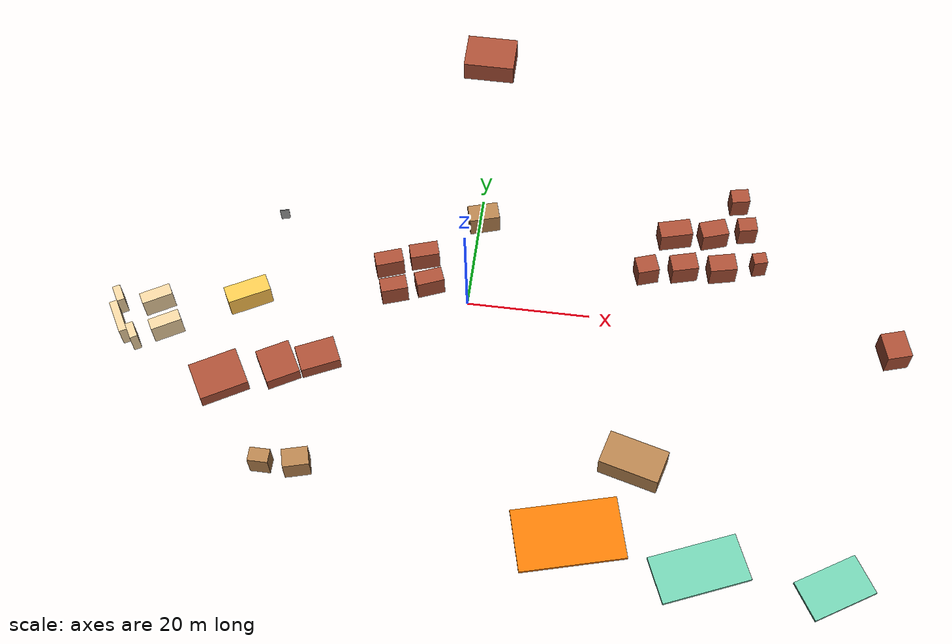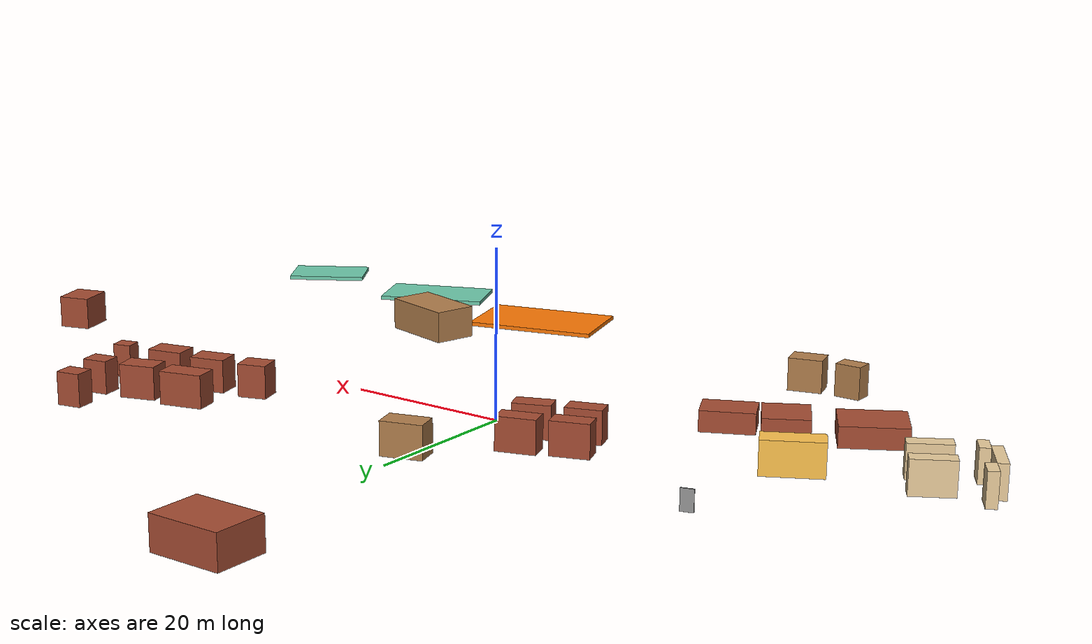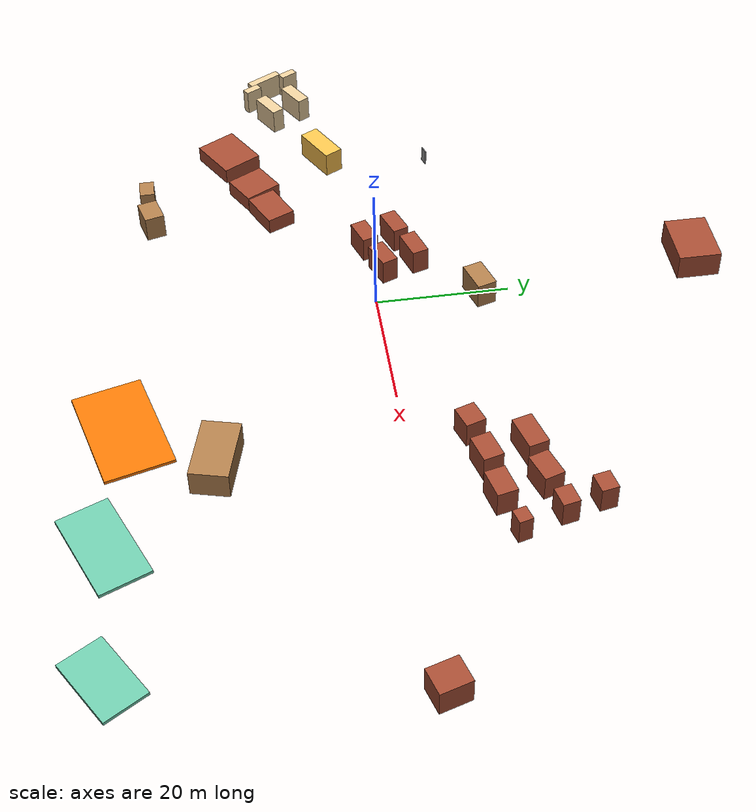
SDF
<?xml version='1.0'?>
<sdf version='1.7'>
  <model name='v1'>
    <pose>7.18403 2.61144 0 0 -0 0</pose>
    <link name='Wall_16'>
      <collision name='Wall_16_Collision'>
        <geometry>
          <box>
            <size>2.80067 1.25 4</size>
          </box>
        </geometry>
        <pose>0 0 2 0 -0 0</pose>
      </collision>
      <visual name='Wall_16_Visual'>
        <pose>0 0 2 0 -0 0</pose>
        <geometry>
          <box>
            <size>2.80067 1.25 4</size>
          </box>
        </geometry>
        <material>
          <script>
            <uri>file://media/materials/scripts/gazebo.material</uri>
            <name>Gazebo/Grey</name>
          </script>
          <ambient>0.921569 0.807843 0.615686 1</ambient>
        </material>
        <meta>
          <layer>0</layer>
        </meta>
      </visual>
      <pose>-59.5805 -16.5579 0 0 -0 2.09418</pose>
    </link>
    <link name='Wall_18'>
      <collision name='Wall_18_Collision'>
        <geometry>
          <box>
            <size>2.80018 1.25 4</size>
          </box>
        </geometry>
        <pose>0 0 2 0 -0 0</pose>
      </collision>
      <visual name='Wall_18_Visual'>
        <pose>0 0 2 0 -0 0</pose>
        <geometry>
          <box>
            <size>2.80018 1.25 4</size>
          </box>
        </geometry>
        <material>
          <script>
            <uri>file://media/materials/scripts/gazebo.material</uri>
            <name>Gazebo/Grey</name>
          </script>
          <ambient>0.921569 0.807843 0.615686 1</ambient>
        </material>
        <meta>
          <layer>0</layer>
        </meta>
      </visual>
      <pose>-63.2985 -10.1519 0 0 -0 2.09418</pose>
    </link>
    <link name='Wall_20'>
      <collision name='Wall_20_Collision'>
        <geometry>
          <box>
            <size>5.80026 1.25 4</size>
          </box>
        </geometry>
        <pose>0 0 2 0 -0 0</pose>
      </collision>
      <visual name='Wall_20_Visual'>
        <pose>0 0 2 0 -0 0</pose>
        <geometry>
          <box>
            <size>5.80026 1.25 4</size>
          </box>
        </geometry>
        <material>
          <script>
            <uri>file://media/materials/scripts/gazebo.material</uri>
            <name>Gazebo/Grey</name>
          </script>
          <ambient>0.921569 0.807843 0.615686 1</ambient>
        </material>
        <meta>
          <layer>0</layer>
        </meta>
      </visual>
      <pose>-62.3175 -14.3269 0 0 -0 -1.04726</pose>
    </link>
    <link name='Wall_23'>
      <collision name='Wall_23_Collision'>
        <geometry>
          <box>
            <size>5 2 4</size>
          </box>
        </geometry>
        <pose>0 0 2 0 -0 0</pose>
      </collision>
      <visual name='Wall_23_Visual'>
        <pose>0 0 2 0 -0 0</pose>
        <geometry>
          <box>
            <size>5 2 4</size>
          </box>
        </geometry>
        <material>
          <script>
            <uri>file://media/materials/scripts/gazebo.material</uri>
            <name>Gazebo/Grey</name>
          </script>
          <ambient>0.921569 0.807843 0.615686 1</ambient>
        </material>
        <meta>
          <layer>0</layer>
        </meta>
      </visual>
      <pose>-57.232 -9.51344 0 0 -0 0.523611</pose>
    </link>
    <link name='Wall_29'>
      <collision name='Wall_29_Collision'>
        <geometry>
          <box>
            <size>5 2 4</size>
          </box>
        </geometry>
        <pose>0 0 2 0 -0 0</pose>
      </collision>
      <visual name='Wall_29_Visual'>
        <pose>0 0 2 0 -0 0</pose>
        <geometry>
          <box>
            <size>5 2 4</size>
          </box>
        </geometry>
        <material>
          <script>
            <uri>file://media/materials/scripts/gazebo.material</uri>
            <name>Gazebo/Grey</name>
          </script>
          <ambient>0.921569 0.807843 0.615686 1</ambient>
        </material>
        <meta>
          <layer>0</layer>
        </meta>
      </visual>
      <pose>-54.732 -14.0254 0 0 -0 0.523611</pose>
    </link>
    <link name='Wall_31'>
      <collision name='Wall_31_Collision'>
        <geometry>
          <box>
            <size>7.07571 3 4</size>
          </box>
        </geometry>
        <pose>0 0 2 0 -0 0</pose>
      </collision>
      <visual name='Wall_31_Visual'>
        <pose>0 0 2 0 -0 0</pose>
        <geometry>
          <box>
            <size>7.07571 3 4</size>
          </box>
        </geometry>
        <material>
          <script>
            <uri>file://media/materials/scripts/gazebo.material</uri>
            <name>Gazebo/Grey</name>
          </script>
          <ambient>1 0.764706 0.305882 1</ambient>
        </material>
        <meta>
          <layer>0</layer>
        </meta>
      </visual>
      <pose>-42.7581 -6.66576 0 0 -0 0.498005</pose>
    </link>
    <link name='Wall_34'>
      <collision name='Wall_34_Collision'>
        <geometry>
          <box>
            <size>4.34585 2.5 4</size>
          </box>
        </geometry>
        <pose>0 0 2 0 -0 0</pose>
      </collision>
      <visual name='Wall_34_Visual'>
        <pose>0 0 2 0 -0 0</pose>
        <geometry>
          <box>
            <size>4.34585 2.5 4</size>
          </box>
        </geometry>
        <material>
          <script>
            <uri>file://media/materials/scripts/gazebo.material</uri>
            <name>Gazebo/Bricks</name>
          </script>
          <ambient>0.435294 0.796078 0.67451 1</ambient>
        </material>
        <meta>
          <layer>0</layer>
        </meta>
      </visual>
      <pose>-19.3355 -2.70814 0 0 -0 0.327061</pose>
    </link>
    <link name='Wall_36'>
      <collision name='Wall_36_Collision'>
        <geometry>
          <box>
            <size>4.60603 2.5 4</size>
          </box>
        </geometry>
        <pose>0 0 2 0 -0 0</pose>
      </collision>
      <visual name='Wall_36_Visual'>
        <pose>0 0 2 0 -0 0</pose>
        <geometry>
          <box>
            <size>4.60603 2.5 4</size>
          </box>
        </geometry>
        <material>
          <script>
            <uri>file://media/materials/scripts/gazebo.material</uri>
            <name>Gazebo/Bricks</name>
          </script>
          <ambient>0.435294 0.796078 0.67451 1</ambient>
        </material>
        <meta>
          <layer>0</layer>
        </meta>
      </visual>
      <pose>-20.8855 2.15596 0 0 -0 0.337818</pose>
    </link>
    <link name='Wall_38'>
      <collision name='Wall_38_Collision'>
        <geometry>
          <box>
            <size>4.72487 2.54 4</size>
          </box>
        </geometry>
        <pose>0 0 2 0 -0 0</pose>
      </collision>
      <visual name='Wall_38_Visual'>
        <pose>0 0 2 0 -0 0</pose>
        <geometry>
          <box>
            <size>4.72487 2.54 4</size>
          </box>
        </geometry>
        <material>
          <script>
            <uri>file://media/materials/scripts/gazebo.material</uri>
            <name>Gazebo/Bricks</name>
          </script>
          <ambient>0.435294 0.796078 0.67451 1</ambient>
        </material>
        <meta>
          <layer>0</layer>
        </meta>
      </visual>
      <pose>-15.3648 4.35634 0 0 -0 0.303513</pose>
    </link>
    <link name='Wall_40'>
      <collision name='Wall_40_Collision'>
        <geometry>
          <box>
            <size>4.51058 2.5 4</size>
          </box>
        </geometry>
        <pose>0 0 2 0 -0 0</pose>
      </collision>
      <visual name='Wall_40_Visual'>
        <pose>0 0 2 0 -0 0</pose>
        <geometry>
          <box>
            <size>4.51058 2.5 4</size>
          </box>
        </geometry>
        <material>
          <script>
            <uri>file://media/materials/scripts/gazebo.material</uri>
            <name>Gazebo/Bricks</name>
          </script>
          <ambient>0.435294 0.796078 0.67451 1</ambient>
        </material>
        <meta>
          <layer>0</layer>
        </meta>
      </visual>
      <pose>-13.7627 -0.637549 0 0 -0 -2.76115</pose>
    </link>
    <link name='Wall_44'>
      <collision name='Wall_44_Collision'>
        <geometry>
          <box>
            <size>4.99946 3 4</size>
          </box>
        </geometry>
        <pose>0 0 2 0 -0 0</pose>
      </collision>
      <visual name='Wall_44_Visual'>
        <pose>0 0 2 0 -0 0</pose>
        <geometry>
          <box>
            <size>4.99946 3 4</size>
          </box>
        </geometry>
        <material>
          <script>
            <uri>file://media/materials/scripts/gazebo.material</uri>
            <name>Gazebo/Wood</name>
          </script>
          <ambient>0.996078 0.47451 0.0196078 1</ambient>
        </material>
        <meta>
          <layer>0</layer>
        </meta>
      </visual>
      <pose>-6.61215 12.9117 0 0 -0 0.291696</pose>
    </link>
    <link name='Wall_46'>
      <collision name='Wall_46_Collision'>
        <geometry>
          <box>
            <size>1.5 0.15 2.5</size>
          </box>
        </geometry>
        <pose>0 0 1.25 0 -0 0</pose>
      </collision>
      <visual name='Wall_46_Visual'>
        <pose>0 0 1.25 0 -0 0</pose>
        <geometry>
          <box>
            <size>1.5 0.15 2.5</size>
          </box>
        </geometry>
        <material>
          <script>
            <uri>file://media/materials/scripts/gazebo.material</uri>
            <name>Gazebo/Grey</name>
          </script>
          <ambient>1 1 1 1</ambient>
        </material>
        <meta>
          <layer>0</layer>
        </meta>
      </visual>
      <pose>-40.1047 9.97183 0 0 -0 -2.87979</pose>
    </link>
    <link name='Wall_50'>
      <collision name='Wall_50_Collision'>
        <geometry>
          <box>
            <size>3.5 3 4</size>
          </box>
        </geometry>
        <pose>0 0 2 0 -0 0</pose>
      </collision>
      <visual name='Wall_50_Visual'>
        <pose>0 0 2 0 -0 0</pose>
        <geometry>
          <box>
            <size>3.5 3 4</size>
          </box>
        </geometry>
        <material>
          <script>
            <uri>file://media/materials/scripts/gazebo.material</uri>
            <name>Gazebo/Bricks</name>
          </script>
          <ambient>0.435294 0.796078 0.67451 1</ambient>
        </material>
        <meta>
          <layer>0</layer>
        </meta>
      </visual>
      <pose>21.342 6.28056 0 0 -0 0.321751</pose>
    </link>
    <link name='Wall_52'>
      <collision name='Wall_52_Collision'>
        <geometry>
          <box>
            <size>4.3499 3 4</size>
          </box>
        </geometry>
        <pose>0 0 2 0 -0 0</pose>
      </collision>
      <visual name='Wall_52_Visual'>
        <pose>0 0 2 0 -0 0</pose>
        <geometry>
          <box>
            <size>4.3499 3 4</size>
          </box>
        </geometry>
        <material>
          <script>
            <uri>file://media/materials/scripts/gazebo.material</uri>
            <name>Gazebo/Bricks</name>
          </script>
          <ambient>0.435294 0.796078 0.67451 1</ambient>
        </material>
        <meta>
          <layer>0</layer>
        </meta>
      </visual>
      <pose>27.3657 7.42135 0 0 -0 0.261509</pose>
    </link>
    <link name='Wall_54'>
      <collision name='Wall_54_Collision'>
        <geometry>
          <box>
            <size>4.42155 3 4</size>
          </box>
        </geometry>
        <pose>0 0 2 0 -0 0</pose>
      </collision>
      <visual name='Wall_54_Visual'>
        <pose>0 0 2 0 -0 0</pose>
        <geometry>
          <box>
            <size>4.42155 3 4</size>
          </box>
        </geometry>
        <material>
          <script>
            <uri>file://media/materials/scripts/gazebo.material</uri>
            <name>Gazebo/Bricks</name>
          </script>
          <ambient>0.435294 0.796078 0.67451 1</ambient>
        </material>
        <meta>
          <layer>0</layer>
        </meta>
      </visual>
      <pose>33.6579 8.08386 0 0 -0 0.223626</pose>
    </link>
    <link name='Wall_56'>
      <collision name='Wall_56_Collision'>
        <geometry>
          <box>
            <size>5.35027 3 4</size>
          </box>
        </geometry>
        <pose>0 0 2 0 -0 0</pose>
      </collision>
      <visual name='Wall_56_Visual'>
        <pose>0 0 2 0 -0 0</pose>
        <geometry>
          <box>
            <size>5.35027 3 4</size>
          </box>
        </geometry>
        <material>
          <script>
            <uri>file://media/materials/scripts/gazebo.material</uri>
            <name>Gazebo/Bricks</name>
          </script>
          <ambient>0.435294 0.796078 0.67451 1</ambient>
        </material>
        <meta>
          <layer>0</layer>
        </meta>
      </visual>
      <pose>25.4744 13.7439 0 0 -0 0.26211</pose>
    </link>
    <link name='Wall_58'>
      <collision name='Wall_58_Collision'>
        <geometry>
          <box>
            <size>4.41995 3 4</size>
          </box>
        </geometry>
        <pose>0 0 2 0 -0 0</pose>
      </collision>
      <visual name='Wall_58_Visual'>
        <pose>0 0 2 0 -0 0</pose>
        <geometry>
          <box>
            <size>4.41995 3 4</size>
          </box>
        </geometry>
        <material>
          <script>
            <uri>file://media/materials/scripts/gazebo.material</uri>
            <name>Gazebo/Bricks</name>
          </script>
          <ambient>0.435294 0.796078 0.67451 1</ambient>
        </material>
        <meta>
          <layer>0</layer>
        </meta>
      </visual>
      <pose>31.829 14.5579 0 0 -0 0.313698</pose>
    </link>
    <link name='Wall_60'>
      <collision name='Wall_60_Collision'>
        <geometry>
          <box>
            <size>3.06617 2.5 4</size>
          </box>
        </geometry>
        <pose>0 0 2 0 -0 0</pose>
      </collision>
      <visual name='Wall_60_Visual'>
        <pose>0 0 2 0 -0 0</pose>
        <geometry>
          <box>
            <size>3.06617 2.5 4</size>
          </box>
        </geometry>
        <material>
          <script>
            <uri>file://media/materials/scripts/gazebo.material</uri>
            <name>Gazebo/Bricks</name>
          </script>
          <ambient>0.435294 0.796078 0.67451 1</ambient>
        </material>
        <meta>
          <layer>0</layer>
        </meta>
      </visual>
      <pose>37.322 16.0563 0 0 -0 0.209078</pose>
    </link>
    <link name='Wall_63'>
      <collision name='Wall_63_Collision'>
        <geometry>
          <box>
            <size>3.012 2.5 4</size>
          </box>
        </geometry>
        <pose>0 0 2 0 -0 0</pose>
      </collision>
      <visual name='Wall_63_Visual'>
        <pose>0 0 2 0 -0 0</pose>
        <geometry>
          <box>
            <size>3.012 2.5 4</size>
          </box>
        </geometry>
        <material>
          <script>
            <uri>file://media/materials/scripts/gazebo.material</uri>
            <name>Gazebo/Bricks</name>
          </script>
          <ambient>0.435294 0.796078 0.67451 1</ambient>
        </material>
        <meta>
          <layer>0</layer>
        </meta>
      </visual>
      <pose>35.818 21.5803 0 0 -0 0.195981</pose>
    </link>
    <link name='Wall_65'>
      <collision name='Wall_65_Collision'>
        <geometry>
          <box>
            <size>2.25 2 4</size>
          </box>
        </geometry>
        <pose>0 0 2 0 -0 0</pose>
      </collision>
      <visual name='Wall_65_Visual'>
        <pose>0 0 2 0 -0 0</pose>
        <geometry>
          <box>
            <size>2.25 2 4</size>
          </box>
        </geometry>
        <material>
          <script>
            <uri>file://media/materials/scripts/gazebo.material</uri>
            <name>Gazebo/Bricks</name>
          </script>
          <ambient>0.435294 0.796078 0.67451 1</ambient>
        </material>
        <meta>
          <layer>0</layer>
        </meta>
      </visual>
      <pose>39.6724 9.69292 0 0 -0 0.261799</pose>
    </link>
    <link name='Wall_67'>
      <collision name='Wall_67_Collision'>
        <geometry>
          <box>
            <size>4.58274 4 4</size>
          </box>
        </geometry>
        <pose>0 0 2 0 -0 0</pose>
      </collision>
      <visual name='Wall_67_Visual'>
        <pose>0 0 2 0 -0 0</pose>
        <geometry>
          <box>
            <size>4.58274 4 4</size>
          </box>
        </geometry>
        <material>
          <script>
            <uri>file://media/materials/scripts/gazebo.material</uri>
            <name>Gazebo/Bricks</name>
          </script>
          <ambient>0.760784 0.662745 0.627451 1</ambient>
        </material>
        <meta>
          <layer>0</layer>
        </meta>
      </visual>
      <pose>61.964 -3.76044 0 0 -0 1.86324</pose>
    </link>
    <link name='Wall_69'>
      <collision name='Wall_69_Collision'>
        <geometry>
          <box>
            <size>8.85 6.5 4</size>
          </box>
        </geometry>
        <pose>0 0 2 0 -0 0</pose>
      </collision>
      <visual name='Wall_69_Visual'>
        <pose>0 0 2 0 -0 0</pose>
        <geometry>
          <box>
            <size>8.85 6.5 4</size>
          </box>
        </geometry>
        <material>
          <script>
            <uri>file://media/materials/scripts/gazebo.material</uri>
            <name>Gazebo/Bricks</name>
          </script>
          <ambient>0.760784 0.662745 0.627451 1</ambient>
        </material>
        <meta>
          <layer>0</layer>
        </meta>
      </visual>
      <pose>-9.88503 46.6496 0 0 -0 0</pose>
    </link>
    <link name='Wall_74'>
      <collision name='Wall_74_Collision'>
        <geometry>
          <box>
            <size>4.10054 3 4</size>
          </box>
        </geometry>
        <pose>0 0 2 0 -0 0</pose>
      </collision>
      <visual name='Wall_74_Visual'>
        <pose>0 0 2 0 -0 0</pose>
        <geometry>
          <box>
            <size>4.10054 3 4</size>
          </box>
        </geometry>
        <material>
          <script>
            <uri>file://media/materials/scripts/gazebo.material</uri>
            <name>Gazebo/Wood</name>
          </script>
          <ambient>0.760784 0.662745 0.627451 1</ambient>
        </material>
        <meta>
          <layer>0</layer>
        </meta>
      </visual>
      <pose>-29.2687 -34.9525 0 0 -0 0.261949</pose>
    </link>
    <link name='Wall_76'>
      <collision name='Wall_76_Collision'>
        <geometry>
          <box>
            <size>3.2 2.25 4</size>
          </box>
        </geometry>
        <pose>0 0 2 0 -0 0</pose>
      </collision>
      <visual name='Wall_76_Visual'>
        <pose>0 0 2 0 -0 0</pose>
        <geometry>
          <box>
            <size>3.2 2.25 4</size>
          </box>
        </geometry>
        <material>
          <script>
            <uri>file://media/materials/scripts/gazebo.material</uri>
            <name>Gazebo/Wood</name>
          </script>
          <ambient>0.760784 0.662745 0.627451 1</ambient>
        </material>
        <meta>
          <layer>0</layer>
        </meta>
      </visual>
      <pose>-34.8435 -35.3558 0 0 -0 0</pose>
    </link>
    <link name='Wall_78'>
      <collision name='Wall_78_Collision'>
        <geometry>
          <box>
            <size>16.6002 10 0.5</size>
          </box>
        </geometry>
        <pose>0 0 0.25 0 -0 0</pose>
      </collision>
      <visual name='Wall_78_Visual'>
        <pose>0 0 0.25 0 -0 0</pose>
        <geometry>
          <box>
            <size>16.6002 10 0.5</size>
          </box>
        </geometry>
        <material>
          <script>
            <uri>file://media/materials/scripts/gazebo.material</uri>
            <name>Gazebo/Grey</name>
          </script>
          <ambient>0.996078 0.47451 0.0196078 1</ambient>
        </material>
        <meta>
          <layer>0</layer>
        </meta>
      </visual>
      <pose>13.5385 -40.7364 0 0 -0 0.261774</pose>
    </link>
    <link name='Wall_80'>
      <collision name='Wall_80_Collision'>
        <geometry>
          <box>
            <size>14.058 7.5 0.5</size>
          </box>
        </geometry>
        <pose>0 0 0.25 0 -0 0</pose>
      </collision>
      <visual name='Wall_80_Visual'>
        <pose>0 0 0.25 0 -0 0</pose>
        <geometry>
          <box>
            <size>14.058 7.5 0.5</size>
          </box>
        </geometry>
        <material>
          <script>
            <uri>file://media/materials/scripts/gazebo.material</uri>
            <name>Gazebo/Grey</name>
          </script>
          <ambient>0.435294 0.796078 0.67451 1</ambient>
        </material>
        <meta>
          <layer>0</layer>
        </meta>
      </visual>
      <pose>33.5944 -43.7091 0 0 -0 0.399844</pose>
    </link>
    <link name='Wall_82'>
      <collision name='Wall_82_Collision'>
        <geometry>
          <box>
            <size>10.486 6.5 0.5</size>
          </box>
        </geometry>
        <pose>0 0 0.25 0 -0 0</pose>
      </collision>
      <visual name='Wall_82_Visual'>
        <pose>0 0 0.25 0 -0 0</pose>
        <geometry>
          <box>
            <size>10.486 6.5 0.5</size>
          </box>
        </geometry>
        <material>
          <script>
            <uri>file://media/materials/scripts/gazebo.material</uri>
            <name>Gazebo/Grey</name>
          </script>
          <ambient>0.435294 0.796078 0.67451 1</ambient>
        </material>
        <meta>
          <layer>0</layer>
        </meta>
      </visual>
      <pose>53.8205 -44.1329 0 0 -0 0.549798</pose>
    </link>
    <link name='Wall_84'>
      <collision name='Wall_84_Collision'>
        <geometry>
          <box>
            <size>9.59967 5.5 4</size>
          </box>
        </geometry>
        <pose>0 0 2 0 -0 0</pose>
      </collision>
      <visual name='Wall_84_Visual'>
        <pose>0 0 2 0 -0 0</pose>
        <geometry>
          <box>
            <size>9.59967 5.5 4</size>
          </box>
        </geometry>
        <material>
          <script>
            <uri>file://media/materials/scripts/gazebo.material</uri>
            <name>Gazebo/Wood</name>
          </script>
          <ambient>1 1 1 1</ambient>
        </material>
        <meta>
          <layer>0</layer>
        </meta>
      </visual>
      <pose>22.208 -28.3729 0 0 -0 -0.261781</pose>
    </link>
    <link name='Wall_86'>
      <collision name='Wall_86_Collision'>
        <geometry>
          <box>
            <size>7.84988 6.5 2.5</size>
          </box>
        </geometry>
        <pose>0 0 1.25 0 -0 0</pose>
      </collision>
      <visual name='Wall_86_Visual'>
        <pose>0 0 1.25 0 -0 0</pose>
        <geometry>
          <box>
            <size>7.84988 6.5 2.5</size>
          </box>
        </geometry>
        <material>
          <script>
            <uri>file://media/materials/scripts/gazebo.material</uri>
            <name>Gazebo/Bricks</name>
          </script>
          <ambient>1 1 1 1</ambient>
        </material>
        <meta>
          <layer>0</layer>
        </meta>
      </visual>
      <pose>-44.4611 -21.7591 0 0 -0 0.523649</pose>
    </link>
    <link name='Wall_88'>
      <collision name='Wall_88_Collision'>
        <geometry>
          <box>
            <size>5.95284 5.5 2.5</size>
          </box>
        </geometry>
        <pose>0 0 1.25 0 -0 0</pose>
      </collision>
      <visual name='Wall_88_Visual'>
        <pose>0 0 1.25 0 -0 0</pose>
        <geometry>
          <box>
            <size>5.95284 5.5 2.5</size>
          </box>
        </geometry>
        <material>
          <script>
            <uri>file://media/materials/scripts/gazebo.material</uri>
            <name>Gazebo/Bricks</name>
          </script>
          <ambient>1 1 1 1</ambient>
        </material>
        <meta>
          <layer>0</layer>
        </meta>
      </visual>
      <pose>-35.5432 -18.3905 0 0 -0 2.08426</pose>
    </link>
    <link name='Wall_90'>
      <collision name='Wall_90_Collision'>
        <geometry>
          <box>
            <size>6.38705 4.5 2.5</size>
          </box>
        </geometry>
        <pose>0 0 1.25 0 -0 0</pose>
      </collision>
      <visual name='Wall_90_Visual'>
        <pose>0 0 1.25 0 -0 0</pose>
        <geometry>
          <box>
            <size>6.38705 4.5 2.5</size>
          </box>
        </geometry>
        <material>
          <script>
            <uri>file://media/materials/scripts/gazebo.material</uri>
            <name>Gazebo/Bricks</name>
          </script>
          <ambient>1 1 1 1</ambient>
        </material>
        <meta>
          <layer>0</layer>
        </meta>
      </visual>
      <pose>-29.5066 -16.2087 0 0 -0 0.442512</pose>
    </link>
    <static>1</static>
  </model>
</sdf>
